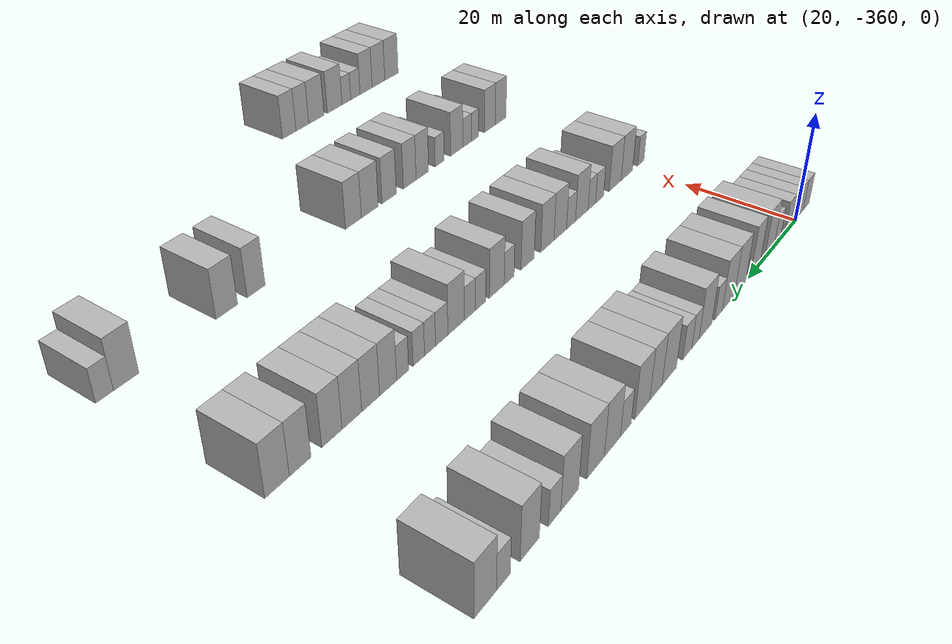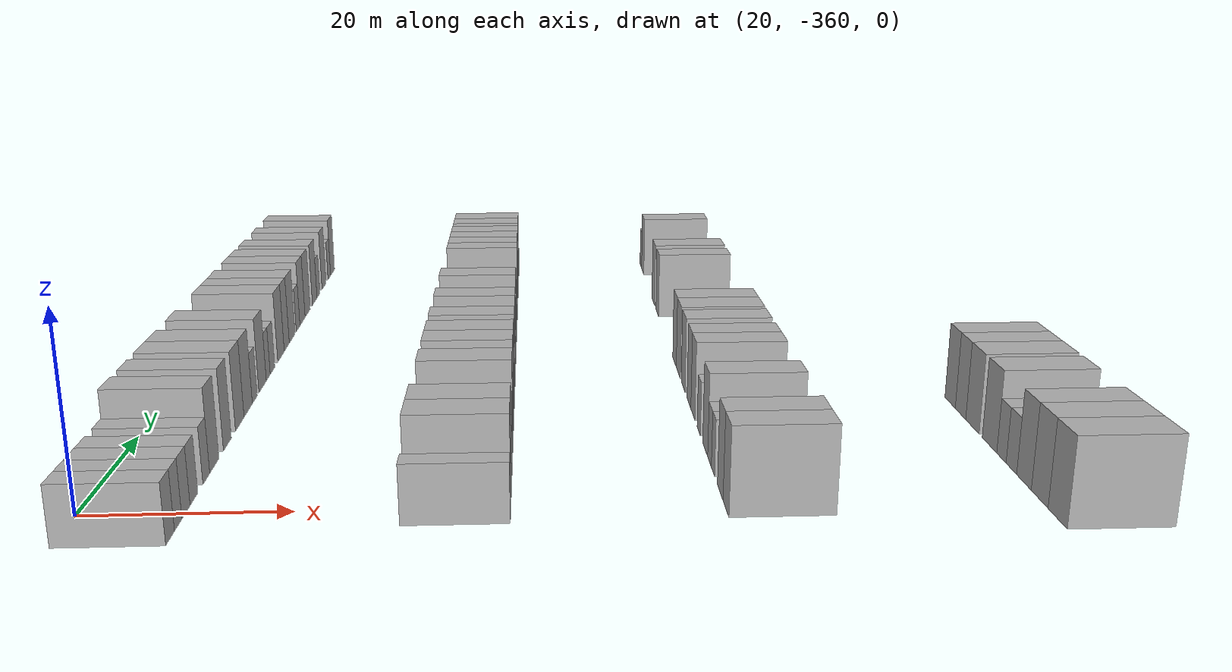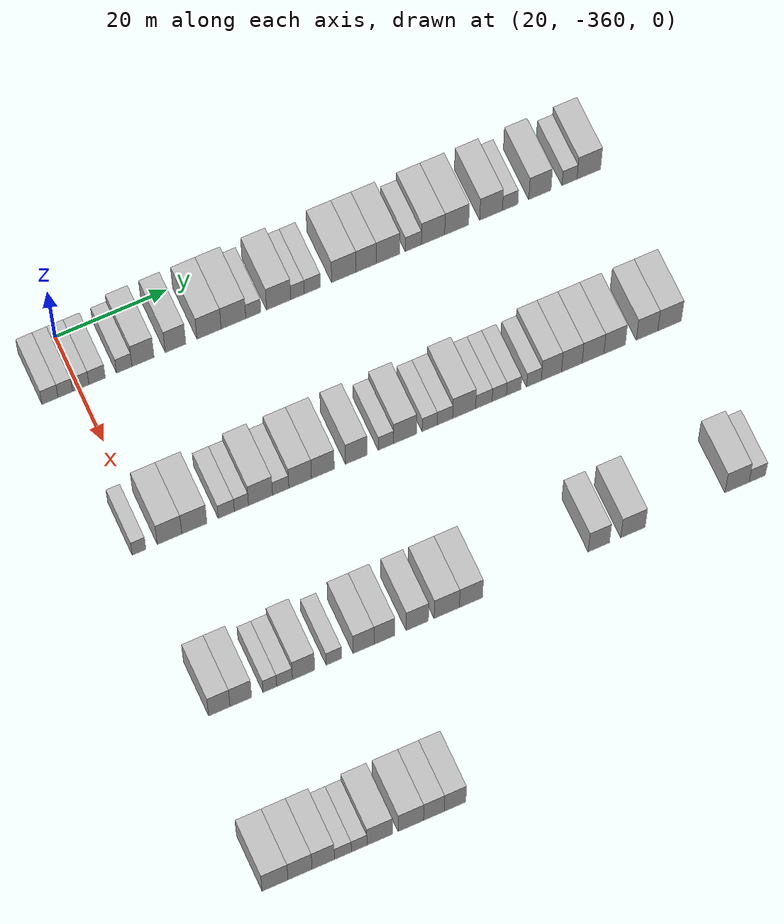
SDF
<sdf version="1.6">
 <world name="default">
  <model name="building_24">
   <static>1</static>
   <pose>25.0000 -365.1820 0 0.000000 0.000000 0.000000</pose>
   <link name="link">
    <pose>0 0 3.00 0 0 0</pose>
    <collision name="collision"><geometry><box><size>10.0000 2.8823 6.0000</size></box></geometry></collision>
    <visual name="visual">
     <cast_shadows>0</cast_shadows>
     <geometry><box><size>10.0000 2.8823 6.0000</size></box></geometry>
     <material>
      <script>
       <uri>model://HANNAS_wall/materials/scripts</uri>
       <uri>model://HANNAS_wall/materials/textures</uri>
       <name>vrc/HANNAS_wall</name>
      </script>
     </material>
    </visual>
   </link>
  </model>
  <model name="building_25">
   <static>1</static>
   <pose>25.0000 -362.4536 0 0.000000 0.000000 0.000000</pose>
   <link name="link">
    <pose>0 0 3.00 0 0 0</pose>
    <collision name="collision"><geometry><box><size>10.0000 2.5746 6.0000</size></box></geometry></collision>
    <visual name="visual">
     <cast_shadows>0</cast_shadows>
     <geometry><box><size>10.0000 2.5746 6.0000</size></box></geometry>
     <material>
      <script>
       <uri>model://HANNAS_wall/materials/scripts</uri>
       <uri>model://HANNAS_wall/materials/textures</uri>
       <name>vrc/HANNAS_wall</name>
      </script>
     </material>
    </visual>
   </link>
  </model>
  <model name="building_26">
   <static>1</static>
   <pose>25.0000 -359.7022 0 0.000000 0.000000 0.000000</pose>
   <link name="link">
    <pose>0 0 3.00 0 0 0</pose>
    <collision name="collision"><geometry><box><size>10.0000 2.9281 6.0000</size></box></geometry></collision>
    <visual name="visual">
     <cast_shadows>0</cast_shadows>
     <geometry><box><size>10.0000 2.9281 6.0000</size></box></geometry>
     <material>
      <script>
       <uri>model://HANNAS_wall/materials/scripts</uri>
       <uri>model://HANNAS_wall/materials/textures</uri>
       <name>vrc/HANNAS_wall</name>
      </script>
     </material>
    </visual>
   </link>
  </model>
  <model name="building_27">
   <static>1</static>
   <pose>25.0000 -356.7800 0 0.000000 0.000000 0.000000</pose>
   <link name="link">
    <pose>0 0 3.00 0 0 0</pose>
    <collision name="collision"><geometry><box><size>10.0000 2.9164 6.0000</size></box></geometry></collision>
    <visual name="visual">
     <cast_shadows>0</cast_shadows>
     <geometry><box><size>10.0000 2.9164 6.0000</size></box></geometry>
     <material>
      <script>
       <uri>model://HANNAS_wall/materials/scripts</uri>
       <uri>model://HANNAS_wall/materials/textures</uri>
       <name>vrc/HANNAS_wall</name>
      </script>
     </material>
    </visual>
   </link>
  </model>
  <model name="building_28">
   <static>1</static>
   <pose>25.0000 -351.9391 0 0.000000 0.000000 0.000000</pose>
   <link name="link">
    <pose>0 0 3.00 0 0 0</pose>
    <collision name="collision"><geometry><box><size>10.0000 2.7654 6.0000</size></box></geometry></collision>
    <visual name="visual">
     <cast_shadows>0</cast_shadows>
     <geometry><box><size>10.0000 2.7654 6.0000</size></box></geometry>
     <material>
      <script>
       <uri>model://HANNAS_wall/materials/scripts</uri>
       <uri>model://HANNAS_wall/materials/textures</uri>
       <name>vrc/HANNAS_wall</name>
      </script>
     </material>
    </visual>
   </link>
  </model>
  <model name="building_29">
   <static>1</static>
   <pose>25.0000 -348.5849 0 0.000000 0.000000 0.000000</pose>
   <link name="link">
    <pose>0 0 4.50 0 0 0</pose>
    <collision name="collision"><geometry><box><size>10.0000 3.9430 9.0000</size></box></geometry></collision>
    <visual name="visual">
     <cast_shadows>0</cast_shadows>
     <geometry><box><size>10.0000 3.9430 9.0000</size></box></geometry>
     <material>
      <script>
       <uri>model://HANNAS_wall/materials/scripts</uri>
       <uri>model://HANNAS_wall/materials/textures</uri>
       <name>vrc/HANNAS_wall</name>
      </script>
     </material>
    </visual>
   </link>
  </model>
  <model name="building_30">
   <static>1</static>
   <pose>25.0000 -342.7692 0 0.000000 0.000000 0.000000</pose>
   <link name="link">
    <pose>0 0 4.50 0 0 0</pose>
    <collision name="collision"><geometry><box><size>10.0000 3.6885 9.0000</size></box></geometry></collision>
    <visual name="visual">
     <cast_shadows>0</cast_shadows>
     <geometry><box><size>10.0000 3.6885 9.0000</size></box></geometry>
     <material>
      <script>
       <uri>model://HANNAS_wall/materials/scripts</uri>
       <uri>model://HANNAS_wall/materials/textures</uri>
       <name>vrc/HANNAS_wall</name>
      </script>
     </material>
    </visual>
   </link>
  </model>
  <model name="building_31">
   <static>1</static>
   <pose>25.0000 -336.7538 0 0.000000 0.000000 0.000000</pose>
   <link name="link">
    <pose>0 0 4.50 0 0 0</pose>
    <collision name="collision"><geometry><box><size>10.0000 4.3421 9.0000</size></box></geometry></collision>
    <visual name="visual">
     <cast_shadows>0</cast_shadows>
     <geometry><box><size>10.0000 4.3421 9.0000</size></box></geometry>
     <material>
      <script>
       <uri>model://HANNAS_wall/materials/scripts</uri>
       <uri>model://HANNAS_wall/materials/textures</uri>
       <name>vrc/HANNAS_wall</name>
      </script>
     </material>
    </visual>
   </link>
  </model>
  <model name="building_32">
   <static>1</static>
   <pose>25.0000 -332.3625 0 0.000000 0.000000 0.000000</pose>
   <link name="link">
    <pose>0 0 4.50 0 0 0</pose>
    <collision name="collision"><geometry><box><size>10.0000 4.4404 9.0000</size></box></geometry></collision>
    <visual name="visual">
     <cast_shadows>0</cast_shadows>
     <geometry><box><size>10.0000 4.4404 9.0000</size></box></geometry>
     <material>
      <script>
       <uri>model://HANNAS_wall/materials/scripts</uri>
       <uri>model://HANNAS_wall/materials/textures</uri>
       <name>vrc/HANNAS_wall</name>
      </script>
     </material>
    </visual>
   </link>
  </model>
  <model name="building_33">
   <static>1</static>
   <pose>25.0000 -328.7803 0 0.000000 0.000000 0.000000</pose>
   <link name="link">
    <pose>0 0 3.00 0 0 0</pose>
    <collision name="collision"><geometry><box><size>10.0000 2.7240 6.0000</size></box></geometry></collision>
    <visual name="visual">
     <cast_shadows>0</cast_shadows>
     <geometry><box><size>10.0000 2.7240 6.0000</size></box></geometry>
     <material>
      <script>
       <uri>model://HANNAS_wall/materials/scripts</uri>
       <uri>model://HANNAS_wall/materials/textures</uri>
       <name>vrc/HANNAS_wall</name>
      </script>
     </material>
    </visual>
   </link>
  </model>
  <model name="building_34">
   <static>1</static>
   <pose>25.0000 -324.2263 0 0.000000 0.000000 0.000000</pose>
   <link name="link">
    <pose>0 0 4.50 0 0 0</pose>
    <collision name="collision"><geometry><box><size>10.0000 4.3841 9.0000</size></box></geometry></collision>
    <visual name="visual">
     <cast_shadows>0</cast_shadows>
     <geometry><box><size>10.0000 4.3841 9.0000</size></box></geometry>
     <material>
      <script>
       <uri>model://HANNAS_wall/materials/scripts</uri>
       <uri>model://HANNAS_wall/materials/textures</uri>
       <name>vrc/HANNAS_wall</name>
      </script>
     </material>
    </visual>
   </link>
  </model>
  <model name="building_35">
   <static>1</static>
   <pose>25.0000 -320.8160 0 0.000000 0.000000 0.000000</pose>
   <link name="link">
    <pose>0 0 3.00 0 0 0</pose>
    <collision name="collision"><geometry><box><size>10.0000 2.4365 6.0000</size></box></geometry></collision>
    <visual name="visual">
     <cast_shadows>0</cast_shadows>
     <geometry><box><size>10.0000 2.4365 6.0000</size></box></geometry>
     <material>
      <script>
       <uri>model://HANNAS_wall/materials/scripts</uri>
       <uri>model://HANNAS_wall/materials/textures</uri>
       <name>vrc/HANNAS_wall</name>
      </script>
     </material>
    </visual>
   </link>
  </model>
  <model name="building_36">
   <static>1</static>
   <pose>25.0000 -318.1327 0 0.000000 0.000000 0.000000</pose>
   <link name="link">
    <pose>0 0 3.00 0 0 0</pose>
    <collision name="collision"><geometry><box><size>10.0000 2.9300 6.0000</size></box></geometry></collision>
    <visual name="visual">
     <cast_shadows>0</cast_shadows>
     <geometry><box><size>10.0000 2.9300 6.0000</size></box></geometry>
     <material>
      <script>
       <uri>model://HANNAS_wall/materials/scripts</uri>
       <uri>model://HANNAS_wall/materials/textures</uri>
       <name>vrc/HANNAS_wall</name>
      </script>
     </material>
    </visual>
   </link>
  </model>
  <model name="building_37">
   <static>1</static>
   <pose>25.0000 -312.4532 0 0.000000 0.000000 0.000000</pose>
   <link name="link">
    <pose>0 0 4.50 0 0 0</pose>
    <collision name="collision"><geometry><box><size>10.0000 4.4289 9.0000</size></box></geometry></collision>
    <visual name="visual">
     <cast_shadows>0</cast_shadows>
     <geometry><box><size>10.0000 4.4289 9.0000</size></box></geometry>
     <material>
      <script>
       <uri>model://HANNAS_wall/materials/scripts</uri>
       <uri>model://HANNAS_wall/materials/textures</uri>
       <name>vrc/HANNAS_wall</name>
      </script>
     </material>
    </visual>
   </link>
  </model>
  <model name="building_38">
   <static>1</static>
   <pose>25.0000 -308.4230 0 0.000000 0.000000 0.000000</pose>
   <link name="link">
    <pose>0 0 4.50 0 0 0</pose>
    <collision name="collision"><geometry><box><size>10.0000 3.6315 9.0000</size></box></geometry></collision>
    <visual name="visual">
     <cast_shadows>0</cast_shadows>
     <geometry><box><size>10.0000 3.6315 9.0000</size></box></geometry>
     <material>
      <script>
       <uri>model://HANNAS_wall/materials/scripts</uri>
       <uri>model://HANNAS_wall/materials/textures</uri>
       <name>vrc/HANNAS_wall</name>
      </script>
     </material>
    </visual>
   </link>
  </model>
  <model name="building_39">
   <static>1</static>
   <pose>25.0000 -304.4598 0 0.000000 0.000000 0.000000</pose>
   <link name="link">
    <pose>0 0 4.50 0 0 0</pose>
    <collision name="collision"><geometry><box><size>10.0000 4.2948 9.0000</size></box></geometry></collision>
    <visual name="visual">
     <cast_shadows>0</cast_shadows>
     <geometry><box><size>10.0000 4.2948 9.0000</size></box></geometry>
     <material>
      <script>
       <uri>model://HANNAS_wall/materials/scripts</uri>
       <uri>model://HANNAS_wall/materials/textures</uri>
       <name>vrc/HANNAS_wall</name>
      </script>
     </material>
    </visual>
   </link>
  </model>
  <model name="building_40">
   <static>1</static>
   <pose>25.0000 -299.8534 0 0.000000 0.000000 0.000000</pose>
   <link name="link">
    <pose>0 0 3.00 0 0 0</pose>
    <collision name="collision"><geometry><box><size>10.0000 2.9182 6.0000</size></box></geometry></collision>
    <visual name="visual">
     <cast_shadows>0</cast_shadows>
     <geometry><box><size>10.0000 2.9182 6.0000</size></box></geometry>
     <material>
      <script>
       <uri>model://HANNAS_wall/materials/scripts</uri>
       <uri>model://HANNAS_wall/materials/textures</uri>
       <name>vrc/HANNAS_wall</name>
      </script>
     </material>
    </visual>
   </link>
  </model>
  <model name="building_41">
   <static>1</static>
   <pose>25.0000 -296.2760 0 0.000000 0.000000 0.000000</pose>
   <link name="link">
    <pose>0 0 4.50 0 0 0</pose>
    <collision name="collision"><geometry><box><size>10.0000 4.2366 9.0000</size></box></geometry></collision>
    <visual name="visual">
     <cast_shadows>0</cast_shadows>
     <geometry><box><size>10.0000 4.2366 9.0000</size></box></geometry>
     <material>
      <script>
       <uri>model://HANNAS_wall/materials/scripts</uri>
       <uri>model://HANNAS_wall/materials/textures</uri>
       <name>vrc/HANNAS_wall</name>
      </script>
     </material>
    </visual>
   </link>
  </model>
  <model name="building_42">
   <static>1</static>
   <pose>25.0000 -291.9646 0 0.000000 0.000000 0.000000</pose>
   <link name="link">
    <pose>0 0 4.50 0 0 0</pose>
    <collision name="collision"><geometry><box><size>10.0000 4.3861 9.0000</size></box></geometry></collision>
    <visual name="visual">
     <cast_shadows>0</cast_shadows>
     <geometry><box><size>10.0000 4.3861 9.0000</size></box></geometry>
     <material>
      <script>
       <uri>model://HANNAS_wall/materials/scripts</uri>
       <uri>model://HANNAS_wall/materials/textures</uri>
       <name>vrc/HANNAS_wall</name>
      </script>
     </material>
    </visual>
   </link>
  </model>
  <model name="building_43">
   <static>1</static>
   <pose>25.0000 -285.6904 0 0.000000 0.000000 0.000000</pose>
   <link name="link">
    <pose>0 0 4.50 0 0 0</pose>
    <collision name="collision"><geometry><box><size>10.0000 4.1624 9.0000</size></box></geometry></collision>
    <visual name="visual">
     <cast_shadows>0</cast_shadows>
     <geometry><box><size>10.0000 4.1624 9.0000</size></box></geometry>
     <material>
      <script>
       <uri>model://HANNAS_wall/materials/scripts</uri>
       <uri>model://HANNAS_wall/materials/textures</uri>
       <name>vrc/HANNAS_wall</name>
      </script>
     </material>
    </visual>
   </link>
  </model>
  <model name="building_44">
   <static>1</static>
   <pose>25.0000 -282.2029 0 0.000000 0.000000 0.000000</pose>
   <link name="link">
    <pose>0 0 3.00 0 0 0</pose>
    <collision name="collision"><geometry><box><size>10.0000 2.8124 6.0000</size></box></geometry></collision>
    <visual name="visual">
     <cast_shadows>0</cast_shadows>
     <geometry><box><size>10.0000 2.8124 6.0000</size></box></geometry>
     <material>
      <script>
       <uri>model://HANNAS_wall/materials/scripts</uri>
       <uri>model://HANNAS_wall/materials/textures</uri>
       <name>vrc/HANNAS_wall</name>
      </script>
     </material>
    </visual>
   </link>
  </model>
  <model name="building_45">
   <static>1</static>
   <pose>25.0000 -276.7568 0 0.000000 0.000000 0.000000</pose>
   <link name="link">
    <pose>0 0 4.50 0 0 0</pose>
    <collision name="collision"><geometry><box><size>10.0000 4.0799 9.0000</size></box></geometry></collision>
    <visual name="visual">
     <cast_shadows>0</cast_shadows>
     <geometry><box><size>10.0000 4.0799 9.0000</size></box></geometry>
     <material>
      <script>
       <uri>model://HANNAS_wall/materials/scripts</uri>
       <uri>model://HANNAS_wall/materials/textures</uri>
       <name>vrc/HANNAS_wall</name>
      </script>
     </material>
    </visual>
   </link>
  </model>
  <model name="building_46">
   <static>1</static>
   <pose>25.0000 -271.3334 0 0.000000 0.000000 0.000000</pose>
   <link name="link">
    <pose>0 0 3.00 0 0 0</pose>
    <collision name="collision"><geometry><box><size>10.0000 2.7668 6.0000</size></box></geometry></collision>
    <visual name="visual">
     <cast_shadows>0</cast_shadows>
     <geometry><box><size>10.0000 2.7668 6.0000</size></box></geometry>
     <material>
      <script>
       <uri>model://HANNAS_wall/materials/scripts</uri>
       <uri>model://HANNAS_wall/materials/textures</uri>
       <name>vrc/HANNAS_wall</name>
      </script>
     </material>
    </visual>
   </link>
  </model>
  <model name="building_47">
   <static>1</static>
   <pose>25.0000 -267.7856 0 0.000000 0.000000 0.000000</pose>
   <link name="link">
    <pose>0 0 4.50 0 0 0</pose>
    <collision name="collision"><geometry><box><size>10.0000 4.3289 9.0000</size></box></geometry></collision>
    <visual name="visual">
     <cast_shadows>0</cast_shadows>
     <geometry><box><size>10.0000 4.3289 9.0000</size></box></geometry>
     <material>
      <script>
       <uri>model://HANNAS_wall/materials/scripts</uri>
       <uri>model://HANNAS_wall/materials/textures</uri>
       <name>vrc/HANNAS_wall</name>
      </script>
     </material>
    </visual>
   </link>
  </model>
  <model name="building_252">
   <static>1</static>
   <pose>55.0000 -362.3259 0 0.000000 0.000000 0.000000</pose>
   <link name="link">
    <pose>0 0 3.00 0 0 0</pose>
    <collision name="collision"><geometry><box><size>10.0000 2.4314 6.0000</size></box></geometry></collision>
    <visual name="visual">
     <cast_shadows>0</cast_shadows>
     <geometry><box><size>10.0000 2.4314 6.0000</size></box></geometry>
     <material>
      <script>
       <uri>model://HANNAS_wall/materials/scripts</uri>
       <uri>model://HANNAS_wall/materials/textures</uri>
       <name>vrc/HANNAS_wall</name>
      </script>
     </material>
    </visual>
   </link>
  </model>
  <model name="building_253">
   <static>1</static>
   <pose>55.0000 -356.9394 0 0.000000 0.000000 0.000000</pose>
   <link name="link">
    <pose>0 0 4.50 0 0 0</pose>
    <collision name="collision"><geometry><box><size>10.0000 4.3417 9.0000</size></box></geometry></collision>
    <visual name="visual">
     <cast_shadows>0</cast_shadows>
     <geometry><box><size>10.0000 4.3417 9.0000</size></box></geometry>
     <material>
      <script>
       <uri>model://HANNAS_wall/materials/scripts</uri>
       <uri>model://HANNAS_wall/materials/textures</uri>
       <name>vrc/HANNAS_wall</name>
      </script>
     </material>
    </visual>
   </link>
  </model>
  <model name="building_254">
   <static>1</static>
   <pose>55.0000 -352.5438 0 0.000000 0.000000 0.000000</pose>
   <link name="link">
    <pose>0 0 4.50 0 0 0</pose>
    <collision name="collision"><geometry><box><size>10.0000 4.4494 9.0000</size></box></geometry></collision>
    <visual name="visual">
     <cast_shadows>0</cast_shadows>
     <geometry><box><size>10.0000 4.4494 9.0000</size></box></geometry>
     <material>
      <script>
       <uri>model://HANNAS_wall/materials/scripts</uri>
       <uri>model://HANNAS_wall/materials/textures</uri>
       <name>vrc/HANNAS_wall</name>
      </script>
     </material>
    </visual>
   </link>
  </model>
  <model name="building_255">
   <static>1</static>
   <pose>55.0000 -346.8875 0 0.000000 0.000000 0.000000</pose>
   <link name="link">
    <pose>0 0 3.00 0 0 0</pose>
    <collision name="collision"><geometry><box><size>10.0000 2.8632 6.0000</size></box></geometry></collision>
    <visual name="visual">
     <cast_shadows>0</cast_shadows>
     <geometry><box><size>10.0000 2.8632 6.0000</size></box></geometry>
     <material>
      <script>
       <uri>model://HANNAS_wall/materials/scripts</uri>
       <uri>model://HANNAS_wall/materials/textures</uri>
       <name>vrc/HANNAS_wall</name>
      </script>
     </material>
    </visual>
   </link>
  </model>
  <model name="building_256">
   <static>1</static>
   <pose>55.0000 -344.1995 0 0.000000 0.000000 0.000000</pose>
   <link name="link">
    <pose>0 0 3.00 0 0 0</pose>
    <collision name="collision"><geometry><box><size>10.0000 2.5128 6.0000</size></box></geometry></collision>
    <visual name="visual">
     <cast_shadows>0</cast_shadows>
     <geometry><box><size>10.0000 2.5128 6.0000</size></box></geometry>
     <material>
      <script>
       <uri>model://HANNAS_wall/materials/scripts</uri>
       <uri>model://HANNAS_wall/materials/textures</uri>
       <name>vrc/HANNAS_wall</name>
      </script>
     </material>
    </visual>
   </link>
  </model>
  <model name="building_257">
   <static>1</static>
   <pose>55.0000 -340.8072 0 0.000000 0.000000 0.000000</pose>
   <link name="link">
    <pose>0 0 4.50 0 0 0</pose>
    <collision name="collision"><geometry><box><size>10.0000 4.2718 9.0000</size></box></geometry></collision>
    <visual name="visual">
     <cast_shadows>0</cast_shadows>
     <geometry><box><size>10.0000 4.2718 9.0000</size></box></geometry>
     <material>
      <script>
       <uri>model://HANNAS_wall/materials/scripts</uri>
       <uri>model://HANNAS_wall/materials/textures</uri>
       <name>vrc/HANNAS_wall</name>
      </script>
     </material>
    </visual>
   </link>
  </model>
  <model name="building_258">
   <static>1</static>
   <pose>55.0000 -337.2197 0 0.000000 0.000000 0.000000</pose>
   <link name="link">
    <pose>0 0 3.00 0 0 0</pose>
    <collision name="collision"><geometry><box><size>10.0000 2.9031 6.0000</size></box></geometry></collision>
    <visual name="visual">
     <cast_shadows>0</cast_shadows>
     <geometry><box><size>10.0000 2.9031 6.0000</size></box></geometry>
     <material>
      <script>
       <uri>model://HANNAS_wall/materials/scripts</uri>
       <uri>model://HANNAS_wall/materials/textures</uri>
       <name>vrc/HANNAS_wall</name>
      </script>
     </material>
    </visual>
   </link>
  </model>
  <model name="building_259">
   <static>1</static>
   <pose>55.0000 -333.7555 0 0.000000 0.000000 0.000000</pose>
   <link name="link">
    <pose>0 0 4.50 0 0 0</pose>
    <collision name="collision"><geometry><box><size>10.0000 4.0254 9.0000</size></box></geometry></collision>
    <visual name="visual">
     <cast_shadows>0</cast_shadows>
     <geometry><box><size>10.0000 4.0254 9.0000</size></box></geometry>
     <material>
      <script>
       <uri>model://HANNAS_wall/materials/scripts</uri>
       <uri>model://HANNAS_wall/materials/textures</uri>
       <name>vrc/HANNAS_wall</name>
      </script>
     </material>
    </visual>
   </link>
  </model>
  <model name="building_260">
   <static>1</static>
   <pose>55.0000 -329.7056 0 0.000000 0.000000 0.000000</pose>
   <link name="link">
    <pose>0 0 4.50 0 0 0</pose>
    <collision name="collision"><geometry><box><size>10.0000 4.0744 9.0000</size></box></geometry></collision>
    <visual name="visual">
     <cast_shadows>0</cast_shadows>
     <geometry><box><size>10.0000 4.0744 9.0000</size></box></geometry>
     <material>
      <script>
       <uri>model://HANNAS_wall/materials/scripts</uri>
       <uri>model://HANNAS_wall/materials/textures</uri>
       <name>vrc/HANNAS_wall</name>
      </script>
     </material>
    </visual>
   </link>
  </model>
  <model name="building_261">
   <static>1</static>
   <pose>55.0000 -323.7426 0 0.000000 0.000000 0.000000</pose>
   <link name="link">
    <pose>0 0 4.50 0 0 0</pose>
    <collision name="collision"><geometry><box><size>10.0000 3.8516 9.0000</size></box></geometry></collision>
    <visual name="visual">
     <cast_shadows>0</cast_shadows>
     <geometry><box><size>10.0000 3.8516 9.0000</size></box></geometry>
     <material>
      <script>
       <uri>model://HANNAS_wall/materials/scripts</uri>
       <uri>model://HANNAS_wall/materials/textures</uri>
       <name>vrc/HANNAS_wall</name>
      </script>
     </material>
    </visual>
   </link>
  </model>
  <model name="building_262">
   <static>1</static>
   <pose>55.0000 -318.4372 0 0.000000 0.000000 0.000000</pose>
   <link name="link">
    <pose>0 0 3.00 0 0 0</pose>
    <collision name="collision"><geometry><box><size>10.0000 2.7592 6.0000</size></box></geometry></collision>
    <visual name="visual">
     <cast_shadows>0</cast_shadows>
     <geometry><box><size>10.0000 2.7592 6.0000</size></box></geometry>
     <material>
      <script>
       <uri>model://HANNAS_wall/materials/scripts</uri>
       <uri>model://HANNAS_wall/materials/textures</uri>
       <name>vrc/HANNAS_wall</name>
      </script>
     </material>
    </visual>
   </link>
  </model>
  <model name="building_263">
   <static>1</static>
   <pose>55.0000 -315.0134 0 0.000000 0.000000 0.000000</pose>
   <link name="link">
    <pose>0 0 4.50 0 0 0</pose>
    <collision name="collision"><geometry><box><size>10.0000 4.0883 9.0000</size></box></geometry></collision>
    <visual name="visual">
     <cast_shadows>0</cast_shadows>
     <geometry><box><size>10.0000 4.0883 9.0000</size></box></geometry>
     <material>
      <script>
       <uri>model://HANNAS_wall/materials/scripts</uri>
       <uri>model://HANNAS_wall/materials/textures</uri>
       <name>vrc/HANNAS_wall</name>
      </script>
     </material>
    </visual>
   </link>
  </model>
  <model name="building_264">
   <static>1</static>
   <pose>55.0000 -310.6141 0 0.000000 0.000000 0.000000</pose>
   <link name="link">
    <pose>0 0 3.00 0 0 0</pose>
    <collision name="collision"><geometry><box><size>10.0000 2.7103 6.0000</size></box></geometry></collision>
    <visual name="visual">
     <cast_shadows>0</cast_shadows>
     <geometry><box><size>10.0000 2.7103 6.0000</size></box></geometry>
     <material>
      <script>
       <uri>model://HANNAS_wall/materials/scripts</uri>
       <uri>model://HANNAS_wall/materials/textures</uri>
       <name>vrc/HANNAS_wall</name>
      </script>
     </material>
    </visual>
   </link>
  </model>
  <model name="building_265">
   <static>1</static>
   <pose>55.0000 -307.8728 0 0.000000 0.000000 0.000000</pose>
   <link name="link">
    <pose>0 0 3.00 0 0 0</pose>
    <collision name="collision"><geometry><box><size>10.0000 2.7722 6.0000</size></box></geometry></collision>
    <visual name="visual">
     <cast_shadows>0</cast_shadows>
     <geometry><box><size>10.0000 2.7722 6.0000</size></box></geometry>
     <material>
      <script>
       <uri>model://HANNAS_wall/materials/scripts</uri>
       <uri>model://HANNAS_wall/materials/textures</uri>
       <name>vrc/HANNAS_wall</name>
      </script>
     </material>
    </visual>
   </link>
  </model>
  <model name="building_266">
   <static>1</static>
   <pose>55.0000 -304.4156 0 0.000000 0.000000 0.000000</pose>
   <link name="link">
    <pose>0 0 4.50 0 0 0</pose>
    <collision name="collision"><geometry><box><size>10.0000 4.1422 9.0000</size></box></geometry></collision>
    <visual name="visual">
     <cast_shadows>0</cast_shadows>
     <geometry><box><size>10.0000 4.1422 9.0000</size></box></geometry>
     <material>
      <script>
       <uri>model://HANNAS_wall/materials/scripts</uri>
       <uri>model://HANNAS_wall/materials/textures</uri>
       <name>vrc/HANNAS_wall</name>
      </script>
     </material>
    </visual>
   </link>
  </model>
  <model name="building_267">
   <static>1</static>
   <pose>55.0000 -300.8602 0 0.000000 0.000000 0.000000</pose>
   <link name="link">
    <pose>0 0 3.00 0 0 0</pose>
    <collision name="collision"><geometry><box><size>10.0000 2.9686 6.0000</size></box></geometry></collision>
    <visual name="visual">
     <cast_shadows>0</cast_shadows>
     <geometry><box><size>10.0000 2.9686 6.0000</size></box></geometry>
     <material>
      <script>
       <uri>model://HANNAS_wall/materials/scripts</uri>
       <uri>model://HANNAS_wall/materials/textures</uri>
       <name>vrc/HANNAS_wall</name>
      </script>
     </material>
    </visual>
   </link>
  </model>
  <model name="building_268">
   <static>1</static>
   <pose>55.0000 -298.0801 0 0.000000 0.000000 0.000000</pose>
   <link name="link">
    <pose>0 0 3.00 0 0 0</pose>
    <collision name="collision"><geometry><box><size>10.0000 2.5916 6.0000</size></box></geometry></collision>
    <visual name="visual">
     <cast_shadows>0</cast_shadows>
     <geometry><box><size>10.0000 2.5916 6.0000</size></box></geometry>
     <material>
      <script>
       <uri>model://HANNAS_wall/materials/scripts</uri>
       <uri>model://HANNAS_wall/materials/textures</uri>
       <name>vrc/HANNAS_wall</name>
      </script>
     </material>
    </visual>
   </link>
  </model>
  <model name="building_269">
   <static>1</static>
   <pose>55.0000 -295.4665 0 0.000000 0.000000 0.000000</pose>
   <link name="link">
    <pose>0 0 3.00 0 0 0</pose>
    <collision name="collision"><geometry><box><size>10.0000 2.6356 6.0000</size></box></geometry></collision>
    <visual name="visual">
     <cast_shadows>0</cast_shadows>
     <geometry><box><size>10.0000 2.6356 6.0000</size></box></geometry>
     <material>
      <script>
       <uri>model://HANNAS_wall/materials/scripts</uri>
       <uri>model://HANNAS_wall/materials/textures</uri>
       <name>vrc/HANNAS_wall</name>
      </script>
     </material>
    </visual>
   </link>
  </model>
  <model name="building_270">
   <static>1</static>
   <pose>55.0000 -291.8231 0 0.000000 0.000000 0.000000</pose>
   <link name="link">
    <pose>0 0 3.00 0 0 0</pose>
    <collision name="collision"><geometry><box><size>10.0000 2.6511 6.0000</size></box></geometry></collision>
    <visual name="visual">
     <cast_shadows>0</cast_shadows>
     <geometry><box><size>10.0000 2.6511 6.0000</size></box></geometry>
     <material>
      <script>
       <uri>model://HANNAS_wall/materials/scripts</uri>
       <uri>model://HANNAS_wall/materials/textures</uri>
       <name>vrc/HANNAS_wall</name>
      </script>
     </material>
    </visual>
   </link>
  </model>
  <model name="building_271">
   <static>1</static>
   <pose>55.0000 -288.6698 0 0.000000 0.000000 0.000000</pose>
   <link name="link">
    <pose>0 0 4.50 0 0 0</pose>
    <collision name="collision"><geometry><box><size>10.0000 3.6557 9.0000</size></box></geometry></collision>
    <visual name="visual">
     <cast_shadows>0</cast_shadows>
     <geometry><box><size>10.0000 3.6557 9.0000</size></box></geometry>
     <material>
      <script>
       <uri>model://HANNAS_wall/materials/scripts</uri>
       <uri>model://HANNAS_wall/materials/textures</uri>
       <name>vrc/HANNAS_wall</name>
      </script>
     </material>
    </visual>
   </link>
  </model>
  <model name="building_272">
   <static>1</static>
   <pose>55.0000 -284.9773 0 0.000000 0.000000 0.000000</pose>
   <link name="link">
    <pose>0 0 4.50 0 0 0</pose>
    <collision name="collision"><geometry><box><size>10.0000 3.7293 9.0000</size></box></geometry></collision>
    <visual name="visual">
     <cast_shadows>0</cast_shadows>
     <geometry><box><size>10.0000 3.7293 9.0000</size></box></geometry>
     <material>
      <script>
       <uri>model://HANNAS_wall/materials/scripts</uri>
       <uri>model://HANNAS_wall/materials/textures</uri>
       <name>vrc/HANNAS_wall</name>
      </script>
     </material>
    </visual>
   </link>
  </model>
  <model name="building_273">
   <static>1</static>
   <pose>55.0000 -281.1418 0 0.000000 0.000000 0.000000</pose>
   <link name="link">
    <pose>0 0 4.50 0 0 0</pose>
    <collision name="collision"><geometry><box><size>10.0000 3.9415 9.0000</size></box></geometry></collision>
    <visual name="visual">
     <cast_shadows>0</cast_shadows>
     <geometry><box><size>10.0000 3.9415 9.0000</size></box></geometry>
     <material>
      <script>
       <uri>model://HANNAS_wall/materials/scripts</uri>
       <uri>model://HANNAS_wall/materials/textures</uri>
       <name>vrc/HANNAS_wall</name>
      </script>
     </material>
    </visual>
   </link>
  </model>
  <model name="building_274">
   <static>1</static>
   <pose>55.0000 -277.2204 0 0.000000 0.000000 0.000000</pose>
   <link name="link">
    <pose>0 0 4.50 0 0 0</pose>
    <collision name="collision"><geometry><box><size>10.0000 3.9012 9.0000</size></box></geometry></collision>
    <visual name="visual">
     <cast_shadows>0</cast_shadows>
     <geometry><box><size>10.0000 3.9012 9.0000</size></box></geometry>
     <material>
      <script>
       <uri>model://HANNAS_wall/materials/scripts</uri>
       <uri>model://HANNAS_wall/materials/textures</uri>
       <name>vrc/HANNAS_wall</name>
      </script>
     </material>
    </visual>
   </link>
  </model>
  <model name="building_275">
   <static>1</static>
   <pose>55.0000 -271.3128 0 0.000000 0.000000 0.000000</pose>
   <link name="link">
    <pose>0 0 4.50 0 0 0</pose>
    <collision name="collision"><geometry><box><size>10.0000 3.9140 9.0000</size></box></geometry></collision>
    <visual name="visual">
     <cast_shadows>0</cast_shadows>
     <geometry><box><size>10.0000 3.9140 9.0000</size></box></geometry>
     <material>
      <script>
       <uri>model://HANNAS_wall/materials/scripts</uri>
       <uri>model://HANNAS_wall/materials/textures</uri>
       <name>vrc/HANNAS_wall</name>
      </script>
     </material>
    </visual>
   </link>
  </model>
  <model name="building_276">
   <static>1</static>
   <pose>55.0000 -267.2131 0 0.000000 0.000000 0.000000</pose>
   <link name="link">
    <pose>0 0 4.50 0 0 0</pose>
    <collision name="collision"><geometry><box><size>10.0000 4.2853 9.0000</size></box></geometry></collision>
    <visual name="visual">
     <cast_shadows>0</cast_shadows>
     <geometry><box><size>10.0000 4.2853 9.0000</size></box></geometry>
     <material>
      <script>
       <uri>model://HANNAS_wall/materials/scripts</uri>
       <uri>model://HANNAS_wall/materials/textures</uri>
       <name>vrc/HANNAS_wall</name>
      </script>
     </material>
    </visual>
   </link>
  </model>
  <model name="building_488">
   <static>1</static>
   <pose>85.0000 -361.3457 0 0.000000 0.000000 0.000000</pose>
   <link name="link">
    <pose>0 0 4.50 0 0 0</pose>
    <collision name="collision"><geometry><box><size>10.0000 3.7561 9.0000</size></box></geometry></collision>
    <visual name="visual">
     <cast_shadows>0</cast_shadows>
     <geometry><box><size>10.0000 3.7561 9.0000</size></box></geometry>
     <material>
      <script>
       <uri>model://HANNAS_wall/materials/scripts</uri>
       <uri>model://HANNAS_wall/materials/textures</uri>
       <name>vrc/HANNAS_wall</name>
      </script>
     </material>
    </visual>
   </link>
  </model>
  <model name="building_489">
   <static>1</static>
   <pose>85.0000 -357.5745 0 0.000000 0.000000 0.000000</pose>
   <link name="link">
    <pose>0 0 4.50 0 0 0</pose>
    <collision name="collision"><geometry><box><size>10.0000 3.7863 9.0000</size></box></geometry></collision>
    <visual name="visual">
     <cast_shadows>0</cast_shadows>
     <geometry><box><size>10.0000 3.7863 9.0000</size></box></geometry>
     <material>
      <script>
       <uri>model://HANNAS_wall/materials/scripts</uri>
       <uri>model://HANNAS_wall/materials/textures</uri>
       <name>vrc/HANNAS_wall</name>
      </script>
     </material>
    </visual>
   </link>
  </model>
  <model name="building_490">
   <static>1</static>
   <pose>85.0000 -352.4807 0 0.000000 0.000000 0.000000</pose>
   <link name="link">
    <pose>0 0 3.00 0 0 0</pose>
    <collision name="collision"><geometry><box><size>10.0000 2.4013 6.0000</size></box></geometry></collision>
    <visual name="visual">
     <cast_shadows>0</cast_shadows>
     <geometry><box><size>10.0000 2.4013 6.0000</size></box></geometry>
     <material>
      <script>
       <uri>model://HANNAS_wall/materials/scripts</uri>
       <uri>model://HANNAS_wall/materials/textures</uri>
       <name>vrc/HANNAS_wall</name>
      </script>
     </material>
    </visual>
   </link>
  </model>
  <model name="building_491">
   <static>1</static>
   <pose>85.0000 -349.9006 0 0.000000 0.000000 0.000000</pose>
   <link name="link">
    <pose>0 0 3.00 0 0 0</pose>
    <collision name="collision"><geometry><box><size>10.0000 2.7587 6.0000</size></box></geometry></collision>
    <visual name="visual">
     <cast_shadows>0</cast_shadows>
     <geometry><box><size>10.0000 2.7587 6.0000</size></box></geometry>
     <material>
      <script>
       <uri>model://HANNAS_wall/materials/scripts</uri>
       <uri>model://HANNAS_wall/materials/textures</uri>
       <name>vrc/HANNAS_wall</name>
      </script>
     </material>
    </visual>
   </link>
  </model>
  <model name="building_492">
   <static>1</static>
   <pose>85.0000 -346.5590 0 0.000000 0.000000 0.000000</pose>
   <link name="link">
    <pose>0 0 4.50 0 0 0</pose>
    <collision name="collision"><geometry><box><size>10.0000 3.9245 9.0000</size></box></geometry></collision>
    <visual name="visual">
     <cast_shadows>0</cast_shadows>
     <geometry><box><size>10.0000 3.9245 9.0000</size></box></geometry>
     <material>
      <script>
       <uri>model://HANNAS_wall/materials/scripts</uri>
       <uri>model://HANNAS_wall/materials/textures</uri>
       <name>vrc/HANNAS_wall</name>
      </script>
     </material>
    </visual>
   </link>
  </model>
  <model name="building_493">
   <static>1</static>
   <pose>85.0000 -341.2264 0 0.000000 0.000000 0.000000</pose>
   <link name="link">
    <pose>0 0 3.00 0 0 0</pose>
    <collision name="collision"><geometry><box><size>10.0000 2.7408 6.0000</size></box></geometry></collision>
    <visual name="visual">
     <cast_shadows>0</cast_shadows>
     <geometry><box><size>10.0000 2.7408 6.0000</size></box></geometry>
     <material>
      <script>
       <uri>model://HANNAS_wall/materials/scripts</uri>
       <uri>model://HANNAS_wall/materials/textures</uri>
       <name>vrc/HANNAS_wall</name>
      </script>
     </material>
    </visual>
   </link>
  </model>
  <model name="building_494">
   <static>1</static>
   <pose>85.0000 -336.0000 0 0.000000 0.000000 0.000000</pose>
   <link name="link">
    <pose>0 0 4.50 0 0 0</pose>
    <collision name="collision"><geometry><box><size>10.0000 3.7119 9.0000</size></box></geometry></collision>
    <visual name="visual">
     <cast_shadows>0</cast_shadows>
     <geometry><box><size>10.0000 3.7119 9.0000</size></box></geometry>
     <material>
      <script>
       <uri>model://HANNAS_wall/materials/scripts</uri>
       <uri>model://HANNAS_wall/materials/textures</uri>
       <name>vrc/HANNAS_wall</name>
      </script>
     </material>
    </visual>
   </link>
  </model>
  <model name="building_495">
   <static>1</static>
   <pose>85.0000 -332.3135 0 0.000000 0.000000 0.000000</pose>
   <link name="link">
    <pose>0 0 4.50 0 0 0</pose>
    <collision name="collision"><geometry><box><size>10.0000 3.6612 9.0000</size></box></geometry></collision>
    <visual name="visual">
     <cast_shadows>0</cast_shadows>
     <geometry><box><size>10.0000 3.6612 9.0000</size></box></geometry>
     <material>
      <script>
       <uri>model://HANNAS_wall/materials/scripts</uri>
       <uri>model://HANNAS_wall/materials/textures</uri>
       <name>vrc/HANNAS_wall</name>
      </script>
     </material>
    </visual>
   </link>
  </model>
  <model name="building_496">
   <static>1</static>
   <pose>85.0000 -326.5128 0 0.000000 0.000000 0.000000</pose>
   <link name="link">
    <pose>0 0 4.50 0 0 0</pose>
    <collision name="collision"><geometry><box><size>10.0000 3.9403 9.0000</size></box></geometry></collision>
    <visual name="visual">
     <cast_shadows>0</cast_shadows>
     <geometry><box><size>10.0000 3.9403 9.0000</size></box></geometry>
     <material>
      <script>
       <uri>model://HANNAS_wall/materials/scripts</uri>
       <uri>model://HANNAS_wall/materials/textures</uri>
       <name>vrc/HANNAS_wall</name>
      </script>
     </material>
    </visual>
   </link>
  </model>
  <model name="building_497">
   <static>1</static>
   <pose>85.0000 -321.2988 0 0.000000 0.000000 0.000000</pose>
   <link name="link">
    <pose>0 0 4.50 0 0 0</pose>
    <collision name="collision"><geometry><box><size>10.0000 4.4877 9.0000</size></box></geometry></collision>
    <visual name="visual">
     <cast_shadows>0</cast_shadows>
     <geometry><box><size>10.0000 4.4877 9.0000</size></box></geometry>
     <material>
      <script>
       <uri>model://HANNAS_wall/materials/scripts</uri>
       <uri>model://HANNAS_wall/materials/textures</uri>
       <name>vrc/HANNAS_wall</name>
      </script>
     </material>
    </visual>
   </link>
  </model>
  <model name="building_498">
   <static>1</static>
   <pose>85.0000 -316.9965 0 0.000000 0.000000 0.000000</pose>
   <link name="link">
    <pose>0 0 4.50 0 0 0</pose>
    <collision name="collision"><geometry><box><size>10.0000 4.1169 9.0000</size></box></geometry></collision>
    <visual name="visual">
     <cast_shadows>0</cast_shadows>
     <geometry><box><size>10.0000 4.1169 9.0000</size></box></geometry>
     <material>
      <script>
       <uri>model://HANNAS_wall/materials/scripts</uri>
       <uri>model://HANNAS_wall/materials/textures</uri>
       <name>vrc/HANNAS_wall</name>
      </script>
     </material>
    </visual>
   </link>
  </model>
  <model name="building_499">
   <static>1</static>
   <pose>85.0000 -294.1948 0 0.000000 0.000000 0.000000</pose>
   <link name="link">
    <pose>0 0 4.50 0 0 0</pose>
    <collision name="collision"><geometry><box><size>10.0000 3.8289 9.0000</size></box></geometry></collision>
    <visual name="visual">
     <cast_shadows>0</cast_shadows>
     <geometry><box><size>10.0000 3.8289 9.0000</size></box></geometry>
     <material>
      <script>
       <uri>model://HANNAS_wall/materials/scripts</uri>
       <uri>model://HANNAS_wall/materials/textures</uri>
       <name>vrc/HANNAS_wall</name>
      </script>
     </material>
    </visual>
   </link>
  </model>
  <model name="building_500">
   <static>1</static>
   <pose>85.0000 -288.0851 0 0.000000 0.000000 0.000000</pose>
   <link name="link">
    <pose>0 0 4.50 0 0 0</pose>
    <collision name="collision"><geometry><box><size>10.0000 4.3906 9.0000</size></box></geometry></collision>
    <visual name="visual">
     <cast_shadows>0</cast_shadows>
     <geometry><box><size>10.0000 4.3906 9.0000</size></box></geometry>
     <material>
      <script>
       <uri>model://HANNAS_wall/materials/scripts</uri>
       <uri>model://HANNAS_wall/materials/textures</uri>
       <name>vrc/HANNAS_wall</name>
      </script>
     </material>
    </visual>
   </link>
  </model>
  <model name="building_501">
   <static>1</static>
   <pose>85.0000 -269.3813 0 0.000000 0.000000 0.000000</pose>
   <link name="link">
    <pose>0 0 4.50 0 0 0</pose>
    <collision name="collision"><geometry><box><size>10.0000 4.3390 9.0000</size></box></geometry></collision>
    <visual name="visual">
     <cast_shadows>0</cast_shadows>
     <geometry><box><size>10.0000 4.3390 9.0000</size></box></geometry>
     <material>
      <script>
       <uri>model://HANNAS_wall/materials/scripts</uri>
       <uri>model://HANNAS_wall/materials/textures</uri>
       <name>vrc/HANNAS_wall</name>
      </script>
     </material>
    </visual>
   </link>
  </model>
  <model name="building_502">
   <static>1</static>
   <pose>85.0000 -265.7237 0 0.000000 0.000000 0.000000</pose>
   <link name="link">
    <pose>0 0 3.00 0 0 0</pose>
    <collision name="collision"><geometry><box><size>10.0000 2.9762 6.0000</size></box></geometry></collision>
    <visual name="visual">
     <cast_shadows>0</cast_shadows>
     <geometry><box><size>10.0000 2.9762 6.0000</size></box></geometry>
     <material>
      <script>
       <uri>model://HANNAS_wall/materials/scripts</uri>
       <uri>model://HANNAS_wall/materials/textures</uri>
       <name>vrc/HANNAS_wall</name>
      </script>
     </material>
    </visual>
   </link>
  </model>
  <model name="building_716">
   <static>1</static>
   <pose>115.0000 -364.9334 0 0.000000 0.000000 0.000000</pose>
   <link name="link">
    <pose>0 0 4.50 0 0 0</pose>
    <collision name="collision"><geometry><box><size>10.0000 4.4808 9.0000</size></box></geometry></collision>
    <visual name="visual">
     <cast_shadows>0</cast_shadows>
     <geometry><box><size>10.0000 4.4808 9.0000</size></box></geometry>
     <material>
      <script>
       <uri>model://HANNAS_wall/materials/scripts</uri>
       <uri>model://HANNAS_wall/materials/textures</uri>
       <name>vrc/HANNAS_wall</name>
      </script>
     </material>
    </visual>
   </link>
  </model>
  <model name="building_717">
   <static>1</static>
   <pose>115.0000 -360.6080 0 0.000000 0.000000 0.000000</pose>
   <link name="link">
    <pose>0 0 4.50 0 0 0</pose>
    <collision name="collision"><geometry><box><size>10.0000 4.1701 9.0000</size></box></geometry></collision>
    <visual name="visual">
     <cast_shadows>0</cast_shadows>
     <geometry><box><size>10.0000 4.1701 9.0000</size></box></geometry>
     <material>
      <script>
       <uri>model://HANNAS_wall/materials/scripts</uri>
       <uri>model://HANNAS_wall/materials/textures</uri>
       <name>vrc/HANNAS_wall</name>
      </script>
     </material>
    </visual>
   </link>
  </model>
  <model name="building_718">
   <static>1</static>
   <pose>115.0000 -356.5753 0 0.000000 0.000000 0.000000</pose>
   <link name="link">
    <pose>0 0 4.50 0 0 0</pose>
    <collision name="collision"><geometry><box><size>10.0000 3.8952 9.0000</size></box></geometry></collision>
    <visual name="visual">
     <cast_shadows>0</cast_shadows>
     <geometry><box><size>10.0000 3.8952 9.0000</size></box></geometry>
     <material>
      <script>
       <uri>model://HANNAS_wall/materials/scripts</uri>
       <uri>model://HANNAS_wall/materials/textures</uri>
       <name>vrc/HANNAS_wall</name>
      </script>
     </material>
    </visual>
   </link>
  </model>
  <model name="building_719">
   <static>1</static>
   <pose>115.0000 -353.1600 0 0.000000 0.000000 0.000000</pose>
   <link name="link">
    <pose>0 0 3.00 0 0 0</pose>
    <collision name="collision"><geometry><box><size>10.0000 2.9354 6.0000</size></box></geometry></collision>
    <visual name="visual">
     <cast_shadows>0</cast_shadows>
     <geometry><box><size>10.0000 2.9354 6.0000</size></box></geometry>
     <material>
      <script>
       <uri>model://HANNAS_wall/materials/scripts</uri>
       <uri>model://HANNAS_wall/materials/textures</uri>
       <name>vrc/HANNAS_wall</name>
      </script>
     </material>
    </visual>
   </link>
  </model>
  <model name="building_720">
   <static>1</static>
   <pose>115.0000 -350.3386 0 0.000000 0.000000 0.000000</pose>
   <link name="link">
    <pose>0 0 3.00 0 0 0</pose>
    <collision name="collision"><geometry><box><size>10.0000 2.7074 6.0000</size></box></geometry></collision>
    <visual name="visual">
     <cast_shadows>0</cast_shadows>
     <geometry><box><size>10.0000 2.7074 6.0000</size></box></geometry>
     <material>
      <script>
       <uri>model://HANNAS_wall/materials/scripts</uri>
       <uri>model://HANNAS_wall/materials/textures</uri>
       <name>vrc/HANNAS_wall</name>
      </script>
     </material>
    </visual>
   </link>
  </model>
  <model name="building_721">
   <static>1</static>
   <pose>115.0000 -346.7659 0 0.000000 0.000000 0.000000</pose>
   <link name="link">
    <pose>0 0 4.50 0 0 0</pose>
    <collision name="collision"><geometry><box><size>10.0000 4.4379 9.0000</size></box></geometry></collision>
    <visual name="visual">
     <cast_shadows>0</cast_shadows>
     <geometry><box><size>10.0000 4.4379 9.0000</size></box></geometry>
     <material>
      <script>
       <uri>model://HANNAS_wall/materials/scripts</uri>
       <uri>model://HANNAS_wall/materials/textures</uri>
       <name>vrc/HANNAS_wall</name>
      </script>
     </material>
    </visual>
   </link>
  </model>
  <model name="building_722">
   <static>1</static>
   <pose>115.0000 -341.3335 0 0.000000 0.000000 0.000000</pose>
   <link name="link">
    <pose>0 0 4.50 0 0 0</pose>
    <collision name="collision"><geometry><box><size>10.0000 4.4270 9.0000</size></box></geometry></collision>
    <visual name="visual">
     <cast_shadows>0</cast_shadows>
     <geometry><box><size>10.0000 4.4270 9.0000</size></box></geometry>
     <material>
      <script>
       <uri>model://HANNAS_wall/materials/scripts</uri>
       <uri>model://HANNAS_wall/materials/textures</uri>
       <name>vrc/HANNAS_wall</name>
      </script>
     </material>
    </visual>
   </link>
  </model>
  <model name="building_723">
   <static>1</static>
   <pose>115.0000 -337.3014 0 0.000000 0.000000 0.000000</pose>
   <link name="link">
    <pose>0 0 4.50 0 0 0</pose>
    <collision name="collision"><geometry><box><size>10.0000 3.6372 9.0000</size></box></geometry></collision>
    <visual name="visual">
     <cast_shadows>0</cast_shadows>
     <geometry><box><size>10.0000 3.6372 9.0000</size></box></geometry>
     <material>
      <script>
       <uri>model://HANNAS_wall/materials/scripts</uri>
       <uri>model://HANNAS_wall/materials/textures</uri>
       <name>vrc/HANNAS_wall</name>
      </script>
     </material>
    </visual>
   </link>
  </model>
  <model name="building_724">
   <static>1</static>
   <pose>115.0000 -333.5989 0 0.000000 0.000000 0.000000</pose>
   <link name="link">
    <pose>0 0 4.50 0 0 0</pose>
    <collision name="collision"><geometry><box><size>10.0000 3.7678 9.0000</size></box></geometry></collision>
    <visual name="visual">
     <cast_shadows>0</cast_shadows>
     <geometry><box><size>10.0000 3.7678 9.0000</size></box></geometry>
     <material>
      <script>
       <uri>model://HANNAS_wall/materials/scripts</uri>
       <uri>model://HANNAS_wall/materials/textures</uri>
       <name>vrc/HANNAS_wall</name>
      </script>
     </material>
    </visual>
   </link>
  </model>
 </world>
</sdf>
